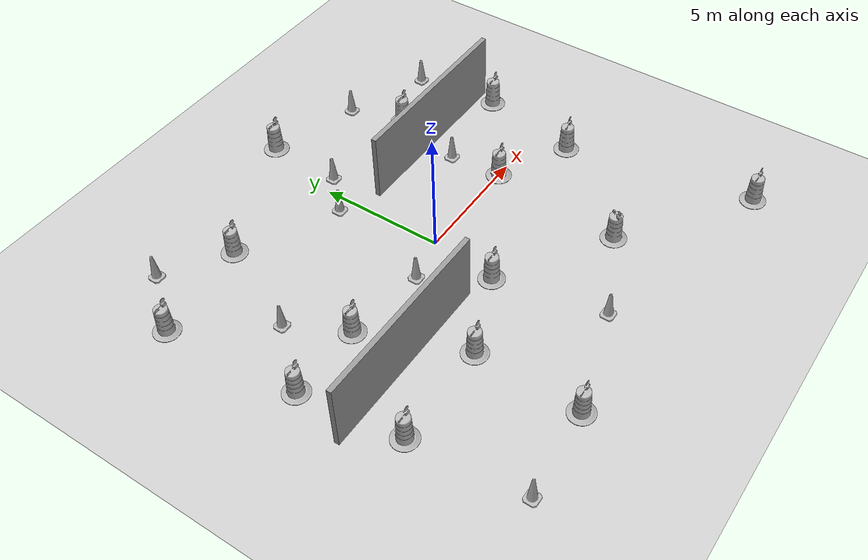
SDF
<sdf version="1.7">
 <world name="default">
  <light name="sun" type="directional">
   <pose>0 0 10 0 -0 0</pose>
   <diffuse>0.8 0.8 0.8 1</diffuse>
   <specular>0.2 0.2 0.2 1</specular>
   <attenuation>
    <range>1000</range>
    <constant>0.9</constant>
    <linear>0.01</linear>
    <quadratic>0.001</quadratic>
   </attenuation>
   <direction>-0.5 0.1 -0.9</direction>
   <spot><inner_angle>0</inner_angle><outer_angle>0</outer_angle><falloff>0</falloff></spot>
  </light>
  <model name="ground_plane">
   <static>1</static>
   <link name="link">
    <collision name="collision">
     <geometry><plane><normal>0 0 1</normal><size>100 100</size></plane></geometry>
     <surface>
      <contact><collide_bitmask>65535</collide_bitmask></contact>
      <friction><ode><mu>100</mu><mu2>50</mu2></ode></friction>
     </surface>
    </collision>
    <visual name="visual">
     <cast_shadows>0</cast_shadows>
     <geometry><plane><normal>0 0 1</normal><size>100 100</size></plane></geometry>
     <material>
      <script><uri>file://media/materials/scripts/gazebo.material</uri><name>Gazebo/Grey</name></script>
     </material>
    </visual>
   </link>
  </model>
  <gravity>0 0 -9.8</gravity>
  <magnetic_field>6e-06 2.3e-05 -4.2e-05</magnetic_field>
  <atmosphere type="adiabatic"/>
  <physics type="ode">
   <max_step_size>0.001</max_step_size>
   <real_time_factor>1</real_time_factor>
   <real_time_update_rate>1000</real_time_update_rate>
  </physics>
  <scene><ambient>0.4 0.4 0.4 1</ambient><background>0.7 0.7 0.7 1</background><shadows>1</shadows></scene>
  <spherical_coordinates>
   <surface_model>EARTH_WGS84</surface_model>
   <latitude_deg>0</latitude_deg>
   <longitude_deg>0</longitude_deg>
   <elevation>0</elevation>
   <heading_deg>0</heading_deg>
  </spherical_coordinates>
  <model name="Construction Barrel">
   <link name="link">
    <inertial>
     <pose>0 0 0.4 0 -0 0</pose>
     <mass>500</mass>
     <inertia><ixx>51.2096</ixx><iyy>51.2096</iyy><izz>25</izz><ixy>0</ixy><ixz>0</ixz><iyz>0</iyz></inertia>
    </inertial>
    <collision name="collision">
     <geometry><mesh><uri>model://construction_barrel/meshes/construction_barrel.dae</uri></mesh></geometry>
    </collision>
    <visual name="visual">
     <geometry><mesh><uri>model://construction_barrel/meshes/construction_barrel.dae</uri></mesh></geometry>
    </visual>
   </link>
   <pose>-8.45367 5.361 -3e-06 0 -1.2e-05 -3e-05</pose>
  </model>
  <model name="Construction Barrel_clone">
   <link name="link">
    <inertial>
     <pose>0 0 0.4 0 -0 0</pose>
     <mass>500</mass>
     <inertia><ixx>51.2096</ixx><iyy>51.2096</iyy><izz>25</izz><ixy>0</ixy><ixz>0</ixz><iyz>0</iyz></inertia>
    </inertial>
    <collision name="collision">
     <geometry><mesh><uri>model://construction_barrel/meshes/construction_barrel.dae</uri></mesh></geometry>
    </collision>
    <visual name="visual">
     <geometry><mesh><uri>model://construction_barrel/meshes/construction_barrel.dae</uri></mesh></geometry>
    </visual>
   </link>
   <pose>-4.42645 5.89318 -3e-06 -0 -1.2e-05 -3.6e-05</pose>
  </model>
  <model name="Construction Barrel_clone_0">
   <link name="link">
    <inertial>
     <pose>0 0 0.4 0 -0 0</pose>
     <mass>500</mass>
     <inertia><ixx>51.2096</ixx><iyy>51.2096</iyy><izz>25</izz><ixy>0</ixy><ixz>0</ixz><iyz>0</iyz></inertia>
    </inertial>
    <collision name="collision">
     <geometry><mesh><uri>model://construction_barrel/meshes/construction_barrel.dae</uri></mesh></geometry>
    </collision>
    <visual name="visual">
     <geometry><mesh><uri>model://construction_barrel/meshes/construction_barrel.dae</uri></mesh></geometry>
    </visual>
   </link>
   <pose>0.791337 8.3152 -3e-06 0 -1.2e-05 -3.2e-05</pose>
  </model>
  <model name="Construction Barrel_clone_1">
   <link name="link">
    <inertial>
     <pose>0 0 0.4 0 -0 0</pose>
     <mass>500</mass>
     <inertia><ixx>51.2096</ixx><iyy>51.2096</iyy><izz>25</izz><ixy>0</ixy><ixz>0</ixz><iyz>0</iyz></inertia>
    </inertial>
    <collision name="collision">
     <geometry><mesh><uri>model://construction_barrel/meshes/construction_barrel.dae</uri></mesh></geometry>
    </collision>
    <visual name="visual">
     <geometry><mesh><uri>model://construction_barrel/meshes/construction_barrel.dae</uri></mesh></geometry>
    </visual>
   </link>
   <pose>4.96665 5.05722 -0 0 0 -4.1e-05</pose>
  </model>
  <model name="Construction Barrel_clone_2">
   <link name="link">
    <inertial>
     <pose>0 0 0.4 0 -0 0</pose>
     <mass>500</mass>
     <inertia><ixx>51.2096</ixx><iyy>51.2096</iyy><izz>25</izz><ixy>0</ixy><ixz>0</ixz><iyz>0</iyz></inertia>
    </inertial>
    <collision name="collision">
     <geometry><mesh><uri>model://construction_barrel/meshes/construction_barrel.dae</uri></mesh></geometry>
    </collision>
    <visual name="visual">
     <geometry><mesh><uri>model://construction_barrel/meshes/construction_barrel.dae</uri></mesh></geometry>
    </visual>
   </link>
   <pose>7.9999 2.56712 -0 0 -0 -3.6e-05</pose>
  </model>
  <model name="Construction Barrel_clone_3">
   <link name="link">
    <inertial>
     <pose>0 0 0.4 0 -0 0</pose>
     <mass>500</mass>
     <inertia><ixx>51.2096</ixx><iyy>51.2096</iyy><izz>25</izz><ixy>0</ixy><ixz>0</ixz><iyz>0</iyz></inertia>
    </inertial>
    <collision name="collision">
     <geometry><mesh><uri>model://construction_barrel/meshes/construction_barrel.dae</uri></mesh></geometry>
    </collision>
    <visual name="visual">
     <geometry><mesh><uri>model://construction_barrel/meshes/construction_barrel.dae</uri></mesh></geometry>
    </visual>
   </link>
   <pose>7.2002 -1.44891 -1e-06 3e-06 -2e-06 0.172271</pose>
  </model>
  <model name="Construction Barrel_clone_4">
   <link name="link">
    <inertial>
     <pose>0 0 0.4 0 -0 0</pose>
     <mass>500</mass>
     <inertia><ixx>51.2096</ixx><iyy>51.2096</iyy><izz>25</izz><ixy>0</ixy><ixz>0</ixz><iyz>0</iyz></inertia>
    </inertial>
    <collision name="collision">
     <geometry><mesh><uri>model://construction_barrel/meshes/construction_barrel.dae</uri></mesh></geometry>
    </collision>
    <visual name="visual">
     <geometry><mesh><uri>model://construction_barrel/meshes/construction_barrel.dae</uri></mesh></geometry>
    </visual>
   </link>
   <pose>3.86095 -5.38245 0 0 0 -2.12815</pose>
  </model>
  <model name="Construction Barrel_clone_5">
   <link name="link">
    <inertial>
     <pose>0 0 0.4 0 -0 0</pose>
     <mass>500</mass>
     <inertia><ixx>51.2096</ixx><iyy>51.2096</iyy><izz>25</izz><ixy>0</ixy><ixz>0</ixz><iyz>0</iyz></inertia>
    </inertial>
    <collision name="collision">
     <geometry><mesh><uri>model://construction_barrel/meshes/construction_barrel.dae</uri></mesh></geometry>
    </collision>
    <visual name="visual">
     <geometry><mesh><uri>model://construction_barrel/meshes/construction_barrel.dae</uri></mesh></geometry>
    </visual>
   </link>
   <pose>-3.44597 -4.00007 -3e-06 0 -1.2e-05 -3.9e-05</pose>
  </model>
  <model name="Construction Barrel_clone_6">
   <link name="link">
    <inertial>
     <pose>0 0 0.4 0 -0 0</pose>
     <mass>500</mass>
     <inertia><ixx>51.2096</ixx><iyy>51.2096</iyy><izz>25</izz><ixy>0</ixy><ixz>0</ixz><iyz>0</iyz></inertia>
    </inertial>
    <collision name="collision">
     <geometry><mesh><uri>model://construction_barrel/meshes/construction_barrel.dae</uri></mesh></geometry>
    </collision>
    <visual name="visual">
     <geometry><mesh><uri>model://construction_barrel/meshes/construction_barrel.dae</uri></mesh></geometry>
    </visual>
   </link>
   <pose>-5.00006 -5.8e-05 -0 0 0 -4.8e-05</pose>
  </model>
  <model name="Construction Barrel_clone_7">
   <link name="link">
    <inertial>
     <pose>0 0 0.4 0 -0 0</pose>
     <mass>500</mass>
     <inertia><ixx>51.2096</ixx><iyy>51.2096</iyy><izz>25</izz><ixy>0</ixy><ixz>0</ixz><iyz>0</iyz></inertia>
    </inertial>
    <collision name="collision">
     <geometry><mesh><uri>model://construction_barrel/meshes/construction_barrel.dae</uri></mesh></geometry>
    </collision>
    <visual name="visual">
     <geometry><mesh><uri>model://construction_barrel/meshes/construction_barrel.dae</uri></mesh></geometry>
    </visual>
   </link>
   <pose>-8.0001 -6.6e-05 -2e-06 -7e-06 -4e-06 -3.9e-05</pose>
  </model>
  <model name="Construction Barrel_clone_8">
   <link name="link">
    <inertial>
     <pose>0 0 0.4 0 -0 0</pose>
     <mass>500</mass>
     <inertia><ixx>51.2096</ixx><iyy>51.2096</iyy><izz>25</izz><ixy>0</ixy><ixz>0</ixz><iyz>0</iyz></inertia>
    </inertial>
    <collision name="collision">
     <geometry><mesh><uri>model://construction_barrel/meshes/construction_barrel.dae</uri></mesh></geometry>
    </collision>
    <visual name="visual">
     <geometry><mesh><uri>model://construction_barrel/meshes/construction_barrel.dae</uri></mesh></geometry>
    </visual>
   </link>
   <pose>-7.48319 -4.00007 -2e-06 -7e-06 -4e-06 -2.8e-05</pose>
  </model>
  <model name="Construction Barrel_clone_9">
   <link name="link">
    <inertial>
     <pose>0 0 0.4 0 -0 0</pose>
     <mass>500</mass>
     <inertia><ixx>51.2096</ixx><iyy>51.2096</iyy><izz>25</izz><ixy>0</ixy><ixz>0</ixz><iyz>0</iyz></inertia>
    </inertial>
    <collision name="collision">
     <geometry><mesh><uri>model://construction_barrel/meshes/construction_barrel.dae</uri></mesh></geometry>
    </collision>
    <visual name="visual">
     <geometry><mesh><uri>model://construction_barrel/meshes/construction_barrel.dae</uri></mesh></geometry>
    </visual>
   </link>
   <pose>-3.56849 -8.18941 -1e-06 -3e-06 -1e-06 -4e-05</pose>
  </model>
  <model name="Construction Barrel_clone_10">
   <link name="link">
    <inertial>
     <pose>0 0 0.4 0 -0 0</pose>
     <mass>500</mass>
     <inertia><ixx>51.2096</ixx><iyy>51.2096</iyy><izz>25</izz><ixy>0</ixy><ixz>0</ixz><iyz>0</iyz></inertia>
    </inertial>
    <collision name="collision">
     <geometry><mesh><uri>model://construction_barrel/meshes/construction_barrel.dae</uri></mesh></geometry>
    </collision>
    <visual name="visual">
     <geometry><mesh><uri>model://construction_barrel/meshes/construction_barrel.dae</uri></mesh></geometry>
    </visual>
   </link>
   <pose>-0.326212 -2.6809 -2e-06 -7e-06 -4e-06 -3.8e-05</pose>
  </model>
  <model name="Construction Barrel_clone_11">
   <link name="link">
    <inertial>
     <pose>0 0 0.4 0 -0 0</pose>
     <mass>500</mass>
     <inertia><ixx>51.2096</ixx><iyy>51.2096</iyy><izz>25</izz><ixy>0</ixy><ixz>0</ixz><iyz>0</iyz></inertia>
    </inertial>
    <collision name="collision">
     <geometry><mesh><uri>model://construction_barrel/meshes/construction_barrel.dae</uri></mesh></geometry>
    </collision>
    <visual name="visual">
     <geometry><mesh><uri>model://construction_barrel/meshes/construction_barrel.dae</uri></mesh></geometry>
    </visual>
   </link>
   <pose>4.40508 0.003215 -3e-06 0 -1.2e-05 -3.8e-05</pose>
  </model>
  <model name="Construction Barrel_clone_12">
   <link name="link">
    <inertial>
     <pose>0 0 0.4 0 -0 0</pose>
     <mass>500</mass>
     <inertia><ixx>51.2096</ixx><iyy>51.2096</iyy><izz>25</izz><ixy>0</ixy><ixz>0</ixz><iyz>0</iyz></inertia>
    </inertial>
    <collision name="collision">
     <geometry><mesh><uri>model://construction_barrel/meshes/construction_barrel.dae</uri></mesh></geometry>
    </collision>
    <visual name="visual">
     <geometry><mesh><uri>model://construction_barrel/meshes/construction_barrel.dae</uri></mesh></geometry>
    </visual>
   </link>
   <pose>8.58469 -8.91357 -3e-06 0 -1.2e-05 -3.1e-05</pose>
  </model>
  <model name="Construction Cone">
   <link name="link">
    <collision name="collision">
     <geometry>
      <mesh><scale>10 10 10</scale><uri>model://construction_cone/meshes/construction_cone.dae</uri></mesh>
     </geometry>
    </collision>
    <visual name="visual">
     <geometry>
      <mesh><scale>10 10 10</scale><uri>model://construction_cone/meshes/construction_cone.dae</uri></mesh>
     </geometry>
    </visual>
    <inertial>
     <inertia><ixx>1</ixx><ixy>0</ixy><ixz>0</ixz><iyy>1</iyy><iyz>0</iyz><izz>1</izz></inertia>
     <mass>1</mass>
    </inertial>
   </link>
   <pose>0.653437 5.27572 -0 0 -1e-06 0</pose>
  </model>
  <model name="Construction Cone_clone">
   <link name="link">
    <collision name="collision">
     <geometry>
      <mesh><scale>10 10 10</scale><uri>model://construction_cone/meshes/construction_cone.dae</uri></mesh>
     </geometry>
    </collision>
    <visual name="visual">
     <geometry>
      <mesh><scale>10 10 10</scale><uri>model://construction_cone/meshes/construction_cone.dae</uri></mesh>
     </geometry>
    </visual>
    <inertial>
     <inertia><ixx>1</ixx><ixy>0</ixy><ixz>0</ixz><iyy>1</iyy><iyz>0</iyz><izz>1</izz></inertia>
     <mass>1</mass>
    </inertial>
   </link>
   <pose>-6.86787 7.40297 -0 0 -0 0</pose>
  </model>
  <model name="Construction Cone_clone_0">
   <link name="link">
    <collision name="collision">
     <geometry>
      <mesh><scale>10 10 10</scale><uri>model://construction_cone/meshes/construction_cone.dae</uri></mesh>
     </geometry>
    </collision>
    <visual name="visual">
     <geometry>
      <mesh><scale>10 10 10</scale><uri>model://construction_cone/meshes/construction_cone.dae</uri></mesh>
     </geometry>
    </visual>
    <inertial>
     <inertia><ixx>1</ixx><ixy>0</ixy><ixz>0</ixz><iyy>1</iyy><iyz>0</iyz><izz>1</izz></inertia>
     <mass>1</mass>
    </inertial>
   </link>
   <pose>-6.12978 2.18357 -0 0 -0 0</pose>
  </model>
  <model name="Construction Cone_clone_1">
   <link name="link">
    <collision name="collision">
     <geometry>
      <mesh><scale>10 10 10</scale><uri>model://construction_cone/meshes/construction_cone.dae</uri></mesh>
     </geometry>
    </collision>
    <visual name="visual">
     <geometry>
      <mesh><scale>10 10 10</scale><uri>model://construction_cone/meshes/construction_cone.dae</uri></mesh>
     </geometry>
    </visual>
    <inertial>
     <inertia><ixx>1</ixx><ixy>0</ixy><ixz>0</ixz><iyy>1</iyy><iyz>0</iyz><izz>1</izz></inertia>
     <mass>1</mass>
    </inertial>
   </link>
   <pose>-7.09755 -8.46221 -0 0 -1e-06 0</pose>
  </model>
  <model name="Construction Cone_clone_2">
   <link name="link">
    <collision name="collision">
     <geometry>
      <mesh><scale>10 10 10</scale><uri>model://construction_cone/meshes/construction_cone.dae</uri></mesh>
     </geometry>
    </collision>
    <visual name="visual">
     <geometry>
      <mesh><scale>10 10 10</scale><uri>model://construction_cone/meshes/construction_cone.dae</uri></mesh>
     </geometry>
    </visual>
    <inertial>
     <inertia><ixx>1</ixx><ixy>0</ixy><ixz>0</ixz><iyy>1</iyy><iyz>0</iyz><izz>1</izz></inertia>
     <mass>1</mass>
    </inertial>
   </link>
   <pose>0.502565 -6.97283 -0 0 -1e-06 0</pose>
  </model>
  <model name="Construction Cone_clone_3">
   <link name="link">
    <collision name="collision">
     <geometry>
      <mesh><scale>10 10 10</scale><uri>model://construction_cone/meshes/construction_cone.dae</uri></mesh>
     </geometry>
    </collision>
    <visual name="visual">
     <geometry>
      <mesh><scale>10 10 10</scale><uri>model://construction_cone/meshes/construction_cone.dae</uri></mesh>
     </geometry>
    </visual>
    <inertial>
     <inertia><ixx>1</ixx><ixy>0</ixy><ixz>0</ixz><iyy>1</iyy><iyz>0</iyz><izz>1</izz></inertia>
     <mass>1</mass>
    </inertial>
   </link>
   <pose>4.23908 2.10061 -0 1e-06 -0 0</pose>
  </model>
  <model name="Construction Cone_clone_4">
   <link name="link">
    <collision name="collision">
     <geometry>
      <mesh><scale>10 10 10</scale><uri>model://construction_cone/meshes/construction_cone.dae</uri></mesh>
     </geometry>
    </collision>
    <visual name="visual">
     <geometry>
      <mesh><scale>10 10 10</scale><uri>model://construction_cone/meshes/construction_cone.dae</uri></mesh>
     </geometry>
    </visual>
    <inertial>
     <inertia><ixx>1</ixx><ixy>0</ixy><ixz>0</ixz><iyy>1</iyy><iyz>0</iyz><izz>1</izz></inertia>
     <mass>1</mass>
    </inertial>
   </link>
   <pose>7.59159 5.94133 -1e-05 0 -0 0</pose>
  </model>
  <model name="Construction Cone_clone_5">
   <link name="link">
    <collision name="collision">
     <geometry>
      <mesh><scale>10 10 10</scale><uri>model://construction_cone/meshes/construction_cone.dae</uri></mesh>
     </geometry>
    </collision>
    <visual name="visual">
     <geometry>
      <mesh><scale>10 10 10</scale><uri>model://construction_cone/meshes/construction_cone.dae</uri></mesh>
     </geometry>
    </visual>
    <inertial>
     <inertia><ixx>1</ixx><ixy>0</ixy><ixz>0</ixz><iyy>1</iyy><iyz>0</iyz><izz>1</izz></inertia>
     <mass>1</mass>
    </inertial>
   </link>
   <pose>4.32665 7.20352 -0 0 -1e-06 0</pose>
  </model>
  <model name="Construction Cone_clone_7">
   <link name="link">
    <collision name="collision">
     <geometry>
      <mesh><scale>10 10 10</scale><uri>model://construction_cone/meshes/construction_cone.dae</uri></mesh>
     </geometry>
    </collision>
    <visual name="visual">
     <geometry>
      <mesh><scale>10 10 10</scale><uri>model://construction_cone/meshes/construction_cone.dae</uri></mesh>
     </geometry>
    </visual>
    <inertial>
     <inertia><ixx>1</ixx><ixy>0</ixy><ixz>0</ixz><iyy>1</iyy><iyz>0</iyz><izz>1</izz></inertia>
     <mass>1</mass>
    </inertial>
   </link>
   <pose>-1.78082 -0.409145 -0 0 -0 0</pose>
  </model>
  <model name="Construction Cone_clone_6">
   <link name="link">
    <collision name="collision">
     <geometry>
      <mesh><scale>10 10 10</scale><uri>model://construction_cone/meshes/construction_cone.dae</uri></mesh>
     </geometry>
    </collision>
    <visual name="visual">
     <geometry>
      <mesh><scale>10 10 10</scale><uri>model://construction_cone/meshes/construction_cone.dae</uri></mesh>
     </geometry>
    </visual>
    <inertial>
     <inertia><ixx>1</ixx><ixy>0</ixy><ixz>0</ixz><iyy>1</iyy><iyz>0</iyz><izz>1</izz></inertia>
     <mass>1</mass>
    </inertial>
   </link>
   <pose>-0.598274 3.99672 -0 0 -1e-06 0</pose>
  </model>
  <model name="grey_wall">
   <static>1</static>
   <link name="link">
    <pose>0 0 1.4 0 -0 0</pose>
    <collision name="collision"><geometry><box><size>7.5 0.2 2.8</size></box></geometry></collision>
    <visual name="visual">
     <cast_shadows>0</cast_shadows>
     <geometry><box><size>7.5 0.2 2.8</size></box></geometry>
     <material>
      <script>
       <uri>model://grey_wall/materials/scripts</uri>
       <uri>model://grey_wall/materials/textures</uri>
       <name>vrc/grey_wall</name>
      </script>
     </material>
    </visual>
   </link>
   <pose>4.65554 3.31143 0 0 -0 0</pose>
  </model>
  <model name="grey_wall_0">
   <static>1</static>
   <link name="link">
    <pose>0 0 1.4 0 -0 0</pose>
    <collision name="collision"><geometry><box><size>7.5 0.2 2.8</size></box></geometry></collision>
    <visual name="visual">
     <cast_shadows>0</cast_shadows>
     <geometry><box><size>7.5 0.2 2.8</size></box></geometry>
     <material>
      <script>
       <uri>model://grey_wall/materials/scripts</uri>
       <uri>model://grey_wall/materials/textures</uri>
       <name>vrc/grey_wall</name>
      </script>
     </material>
    </visual>
   </link>
   <pose>-5.06123 -2.31212 0 0 -0 0</pose>
  </model>
 </world>
</sdf>
